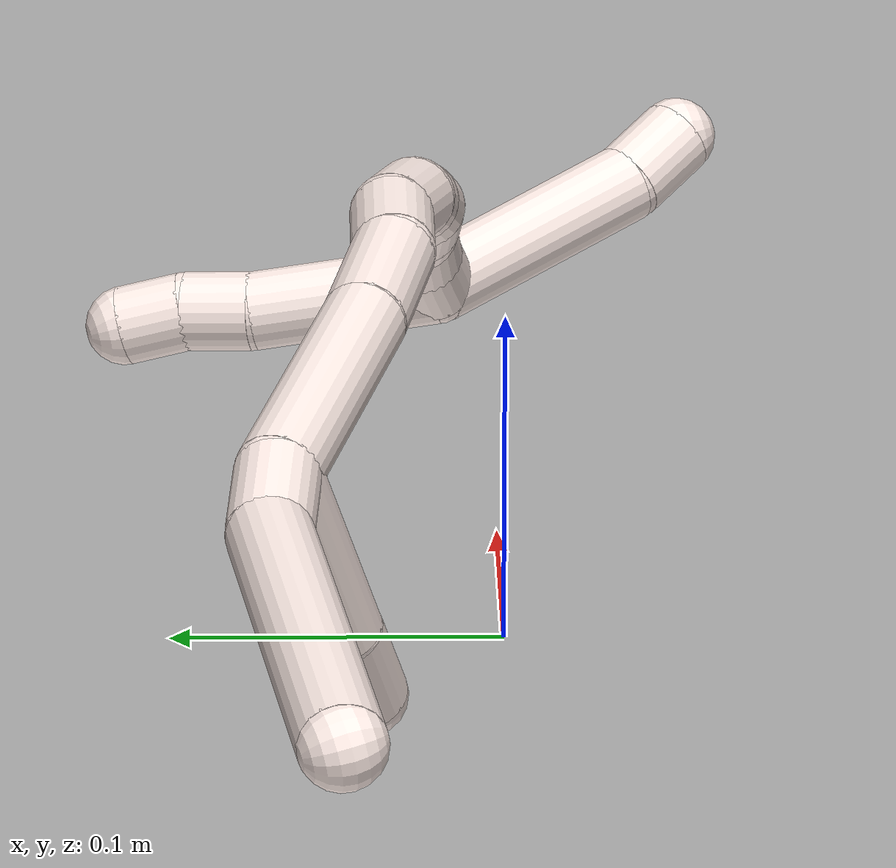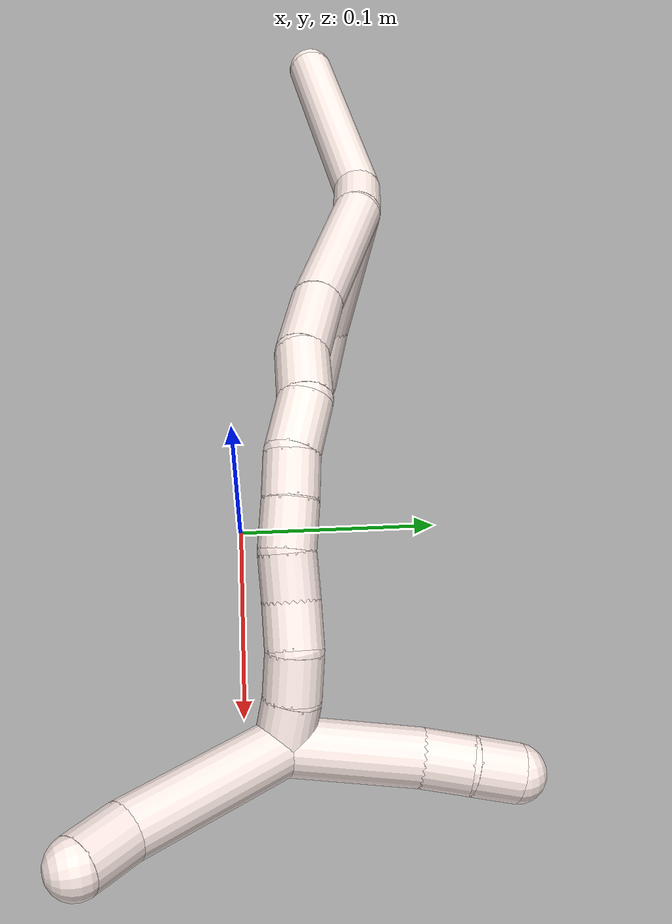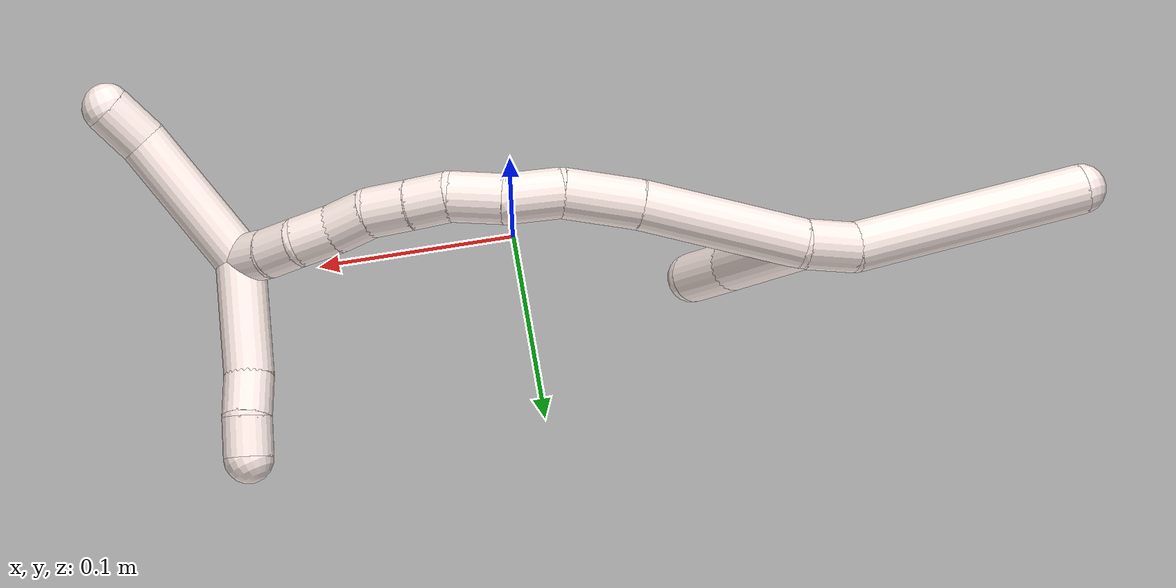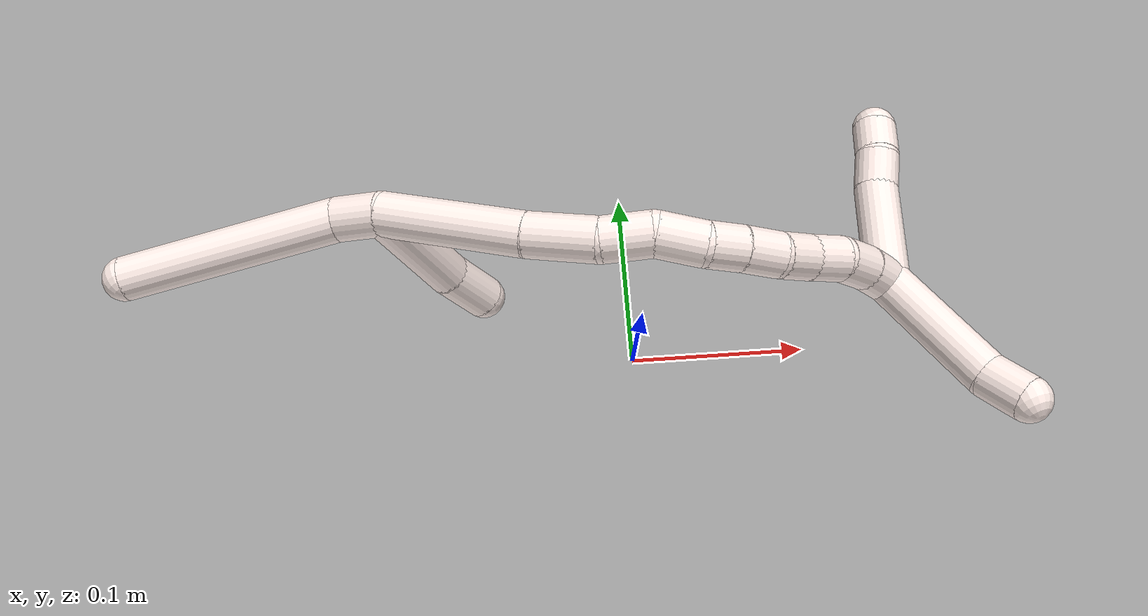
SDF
<sdf version="1.7">
 <world name="default">
  <model name="11">
   <static>0</static>
   <link name="11">
    <collision name="collision-cylinder-e_1_2_8">
     <pose>-0.012502 0.000174 -0.00524 -3.10835 -1.17375 3.09161</pose>
     <geometry><cylinder><radius>0.0125</radius><length>0.027114</length></cylinder></geometry>
     <surface>
      <friction><ode><mu>1.16</mu><mu2>1.16</mu2><slip1>0</slip1><slip2>0</slip2></ode></friction>
      <contact><ode><kp>1e+06</kp><kd>1</kd><max_vel>0</max_vel><min_depth>0.001</min_depth></ode></contact>
     </surface>
    </collision>
    <visual name="visual-cylinder-e_1_2_8">
     <pose>-0.012502 0.000174 -0.00524 -3.10835 -1.17375 3.09161</pose>
     <geometry><cylinder><radius>0.0125</radius><length>0.027114</length></cylinder></geometry>
     <material><ambient>1 0.933333 0.909804 1</ambient></material>
    </visual>
    <collision name="collision-cylinder-e_2_8_6">
     <pose>-0.084797 0.012034 -0.018452 -2.16951 -1.33848 1.9639</pose>
     <geometry><cylinder><radius>0.0125</radius><length>0.122886</length></cylinder></geometry>
     <surface>
      <friction><ode><mu>1.16</mu><mu2>1.16</mu2><slip1>0</slip1><slip2>0</slip2></ode></friction>
      <contact><ode><kp>1e+06</kp><kd>1</kd><max_vel>0</max_vel><min_depth>0.001</min_depth></ode></contact>
     </surface>
    </collision>
    <visual name="visual-cylinder-e_2_8_6">
     <pose>-0.084797 0.012034 -0.018452 -2.16951 -1.33848 1.9639</pose>
     <geometry><cylinder><radius>0.0125</radius><length>0.122886</length></cylinder></geometry>
     <material><ambient>1 0.933333 0.909804 1</ambient></material>
    </visual>
    <collision name="collision-cylinder-e_1_2_9">
     <pose>0.002187 -0.033053 0.006441 1.37835 0.064861 0.053449</pose>
     <geometry><cylinder><radius>0.0125</radius><length>0.067492</length></cylinder></geometry>
     <surface>
      <friction><ode><mu>1.16</mu><mu2>1.16</mu2><slip1>0</slip1><slip2>0</slip2></ode></friction>
      <contact><ode><kp>1e+06</kp><kd>1</kd><max_vel>0</max_vel><min_depth>0.001</min_depth></ode></contact>
     </surface>
    </collision>
    <visual name="visual-cylinder-e_1_2_9">
     <pose>0.002187 -0.033053 0.006441 1.37835 0.064861 0.053449</pose>
     <geometry><cylinder><radius>0.0125</radius><length>0.067492</length></cylinder></geometry>
     <material><ambient>1 0.933333 0.909804 1</ambient></material>
    </visual>
    <collision name="collision-cylinder-e_2_9_5">
     <pose>0.007551 -0.081708 0.016155 1.36397 0.196667 0.159859</pose>
     <geometry><cylinder><radius>0.0125</radius><length>0.032508</length></cylinder></geometry>
     <surface>
      <friction><ode><mu>1.16</mu><mu2>1.16</mu2><slip1>0</slip1><slip2>0</slip2></ode></friction>
      <contact><ode><kp>1e+06</kp><kd>1</kd><max_vel>0</max_vel><min_depth>0.001</min_depth></ode></contact>
     </surface>
    </collision>
    <visual name="visual-cylinder-e_2_9_5">
     <pose>0.007551 -0.081708 0.016155 1.36397 0.196667 0.159859</pose>
     <geometry><cylinder><radius>0.0125</radius><length>0.032508</length></cylinder></geometry>
     <material><ambient>1 0.933333 0.909804 1</ambient></material>
    </visual>
    <collision name="collision-cylinder-e_1_2_10">
     <pose>0.033944 -0.00491 0.023665 0.204579 0.952044 0.105745</pose>
     <geometry><cylinder><radius>0.0125</radius><length>0.083339</length></cylinder></geometry>
     <surface>
      <friction><ode><mu>1.16</mu><mu2>1.16</mu2><slip1>0</slip1><slip2>0</slip2></ode></friction>
      <contact><ode><kp>1e+06</kp><kd>1</kd><max_vel>0</max_vel><min_depth>0.001</min_depth></ode></contact>
     </surface>
    </collision>
    <visual name="visual-cylinder-e_1_2_10">
     <pose>0.033944 -0.00491 0.023665 0.204579 0.952044 0.105745</pose>
     <geometry><cylinder><radius>0.0125</radius><length>0.083339</length></cylinder></geometry>
     <material><ambient>1 0.933333 0.909804 1</ambient></material>
    </visual>
    <collision name="collision-cylinder-e_2_10_11">
     <pose>0.084819 -0.012663 0.057191 0.280708 1.02588 0.158813</pose>
     <geometry><cylinder><radius>0.0125</radius><length>0.039595</length></cylinder></geometry>
     <surface>
      <friction><ode><mu>1.16</mu><mu2>1.16</mu2><slip1>0</slip1><slip2>0</slip2></ode></friction>
      <contact><ode><kp>1e+06</kp><kd>1</kd><max_vel>0</max_vel><min_depth>0.001</min_depth></ode></contact>
     </surface>
    </collision>
    <visual name="visual-cylinder-e_2_10_11">
     <pose>0.084819 -0.012663 0.057191 0.280708 1.02588 0.158813</pose>
     <geometry><cylinder><radius>0.0125</radius><length>0.039595</length></cylinder></geometry>
     <material><ambient>1 0.933333 0.909804 1</ambient></material>
    </visual>
    <collision name="collision-cylinder-e_3_11_12">
     <pose>0.114705 -0.018749 0.070826 0.709646 1.20404 0.498562</pose>
     <geometry><cylinder><radius>0.0125</radius><length>0.027757</length></cylinder></geometry>
     <surface>
      <friction><ode><mu>1.16</mu><mu2>1.16</mu2><slip1>0</slip1><slip2>0</slip2></ode></friction>
      <contact><ode><kp>1e+06</kp><kd>1</kd><max_vel>0</max_vel><min_depth>0.001</min_depth></ode></contact>
     </surface>
    </collision>
    <visual name="visual-cylinder-e_3_11_12">
     <pose>0.114705 -0.018749 0.070826 0.709646 1.20404 0.498562</pose>
     <geometry><cylinder><radius>0.0125</radius><length>0.027757</length></cylinder></geometry>
     <material><ambient>1 0.933333 0.909804 1</ambient></material>
    </visual>
    <collision name="collision-cylinder-e_4_12_13">
     <pose>0.137797 -0.027976 0.080843 0.764448 0.864535 0.366767</pose>
     <geometry><cylinder><radius>0.0125</radius><length>0.026648</length></cylinder></geometry>
     <surface>
      <friction><ode><mu>1.16</mu><mu2>1.16</mu2><slip1>0</slip1><slip2>0</slip2></ode></friction>
      <contact><ode><kp>1e+06</kp><kd>1</kd><max_vel>0</max_vel><min_depth>0.001</min_depth></ode></contact>
     </surface>
    </collision>
    <visual name="visual-cylinder-e_4_12_13">
     <pose>0.137797 -0.027976 0.080843 0.764448 0.864535 0.366767</pose>
     <geometry><cylinder><radius>0.0125</radius><length>0.026648</length></cylinder></geometry>
     <material><ambient>1 0.933333 0.909804 1</ambient></material>
    </visual>
    <collision name="collision-cylinder-e_5_13_14">
     <pose>0.155337 -0.040322 0.089641 1.18863 0.823762 0.574181</pose>
     <geometry><cylinder><radius>0.0125</radius><length>0.020179</length></cylinder></geometry>
     <surface>
      <friction><ode><mu>1.16</mu><mu2>1.16</mu2><slip1>0</slip1><slip2>0</slip2></ode></friction>
      <contact><ode><kp>1e+06</kp><kd>1</kd><max_vel>0</max_vel><min_depth>0.001</min_depth></ode></contact>
     </surface>
    </collision>
    <visual name="visual-cylinder-e_5_13_14">
     <pose>0.155337 -0.040322 0.089641 1.18863 0.823762 0.574181</pose>
     <geometry><cylinder><radius>0.0125</radius><length>0.020179</length></cylinder></geometry>
     <material><ambient>1 0.933333 0.909804 1</ambient></material>
    </visual>
    <collision name="collision-cylinder-e_6_14_15">
     <pose>0.170201 -0.053906 0.095108 1.18768 0.764103 0.52978</pose>
     <geometry><cylinder><radius>0.0125</radius><length>0.021571</length></cylinder></geometry>
     <surface>
      <friction><ode><mu>1.16</mu><mu2>1.16</mu2><slip1>0</slip1><slip2>0</slip2></ode></friction>
      <contact><ode><kp>1e+06</kp><kd>1</kd><max_vel>0</max_vel><min_depth>0.001</min_depth></ode></contact>
     </surface>
    </collision>
    <visual name="visual-cylinder-e_6_14_15">
     <pose>0.170201 -0.053906 0.095108 1.18768 0.764103 0.52978</pose>
     <geometry><cylinder><radius>0.0125</radius><length>0.021571</length></cylinder></geometry>
     <material><ambient>1 0.933333 0.909804 1</ambient></material>
    </visual>
    <collision name="collision-cylinder-e_7_15_16">
     <pose>0.184073 -0.069111 0.098734 1.48145 0.674535 0.620595</pose>
     <geometry><cylinder><radius>0.0125</radius><length>0.020525</length></cylinder></geometry>
     <surface>
      <friction><ode><mu>1.16</mu><mu2>1.16</mu2><slip1>0</slip1><slip2>0</slip2></ode></friction>
      <contact><ode><kp>1e+06</kp><kd>1</kd><max_vel>0</max_vel><min_depth>0.001</min_depth></ode></contact>
     </surface>
    </collision>
    <visual name="visual-cylinder-e_7_15_16">
     <pose>0.184073 -0.069111 0.098734 1.48145 0.674535 0.620595</pose>
     <geometry><cylinder><radius>0.0125</radius><length>0.020525</length></cylinder></geometry>
     <material><ambient>1 0.933333 0.909804 1</ambient></material>
    </visual>
    <collision name="collision-cylinder-e_8_16_17">
     <pose>0.197692 -0.08405 0.100782 1.38156 0.794372 0.667572</pose>
     <geometry><cylinder><radius>0.0125</radius><length>0.020212</length></cylinder></geometry>
     <surface>
      <friction><ode><mu>1.16</mu><mu2>1.16</mu2><slip1>0</slip1><slip2>0</slip2></ode></friction>
      <contact><ode><kp>1e+06</kp><kd>1</kd><max_vel>0</max_vel><min_depth>0.001</min_depth></ode></contact>
     </surface>
    </collision>
    <visual name="visual-cylinder-e_8_16_17">
     <pose>0.197692 -0.08405 0.100782 1.38156 0.794372 0.667572</pose>
     <geometry><cylinder><radius>0.0125</radius><length>0.020212</length></cylinder></geometry>
     <material><ambient>1 0.933333 0.909804 1</ambient></material>
    </visual>
    <collision name="collision-cylinder-e_9_17_18">
     <pose>0.20963 -0.099685 0.103739 1.38566 0.491521 0.410564</pose>
     <geometry><cylinder><radius>0.0125</radius><length>0.020033</length></cylinder></geometry>
     <surface>
      <friction><ode><mu>1.16</mu><mu2>1.16</mu2><slip1>0</slip1><slip2>0</slip2></ode></friction>
      <contact><ode><kp>1e+06</kp><kd>1</kd><max_vel>0</max_vel><min_depth>0.001</min_depth></ode></contact>
     </surface>
    </collision>
    <visual name="visual-cylinder-e_9_17_18">
     <pose>0.20963 -0.099685 0.103739 1.38566 0.491521 0.410564</pose>
     <geometry><cylinder><radius>0.0125</radius><length>0.020033</length></cylinder></geometry>
     <material><ambient>1 0.933333 0.909804 1</ambient></material>
    </visual>
    <collision name="collision-cylinder-e_10_18_1">
     <pose>0.218097 -0.117346 0.107962 1.28928 0.380506 0.287562</pose>
     <geometry><cylinder><radius>0.0125</radius><length>0.020141</length></cylinder></geometry>
     <surface>
      <friction><ode><mu>1.16</mu><mu2>1.16</mu2><slip1>0</slip1><slip2>0</slip2></ode></friction>
      <contact><ode><kp>1e+06</kp><kd>1</kd><max_vel>0</max_vel><min_depth>0.001</min_depth></ode></contact>
     </surface>
    </collision>
    <visual name="visual-cylinder-e_10_18_1">
     <pose>0.218097 -0.117346 0.107962 1.28928 0.380506 0.287562</pose>
     <geometry><cylinder><radius>0.0125</radius><length>0.020141</length></cylinder></geometry>
     <material><ambient>1 0.933333 0.909804 1</ambient></material>
    </visual>
    <collision name="collision-cylinder-e_1_1_19">
     <pose>0.233031 -0.125907 0.146568 -0.01169 0.301389 -0.001775</pose>
     <geometry><cylinder><radius>0.0125</radius><length>0.075421</length></cylinder></geometry>
     <surface>
      <friction><ode><mu>1.16</mu><mu2>1.16</mu2><slip1>0</slip1><slip2>0</slip2></ode></friction>
      <contact><ode><kp>1e+06</kp><kd>1</kd><max_vel>0</max_vel><min_depth>0.001</min_depth></ode></contact>
     </surface>
    </collision>
    <visual name="visual-cylinder-e_1_1_19">
     <pose>0.233031 -0.125907 0.146568 -0.01169 0.301389 -0.001775</pose>
     <geometry><cylinder><radius>0.0125</radius><length>0.075421</length></cylinder></geometry>
     <material><ambient>1 0.933333 0.909804 1</ambient></material>
    </visual>
    <collision name="collision-cylinder-e_2_19_4">
     <pose>0.250152 -0.123898 0.193225 -0.148053 0.503164 -0.038119</pose>
     <geometry><cylinder><radius>0.0125</radius><length>0.024579</length></cylinder></geometry>
     <surface>
      <friction><ode><mu>1.16</mu><mu2>1.16</mu2><slip1>0</slip1><slip2>0</slip2></ode></friction>
      <contact><ode><kp>1e+06</kp><kd>1</kd><max_vel>0</max_vel><min_depth>0.001</min_depth></ode></contact>
     </surface>
    </collision>
    <visual name="visual-cylinder-e_2_19_4">
     <pose>0.250152 -0.123898 0.193225 -0.148053 0.503164 -0.038119</pose>
     <geometry><cylinder><radius>0.0125</radius><length>0.024579</length></cylinder></geometry>
     <material><ambient>1 0.933333 0.909804 1</ambient></material>
    </visual>
    <collision name="collision-cylinder-e_1_1_20">
     <pose>0.231147 -0.128832 0.082994 3.05102 0.324451 2.60135</pose>
     <geometry><cylinder><radius>0.0125</radius><length>0.058406</length></cylinder></geometry>
     <surface>
      <friction><ode><mu>1.16</mu><mu2>1.16</mu2><slip1>0</slip1><slip2>0</slip2></ode></friction>
      <contact><ode><kp>1e+06</kp><kd>1</kd><max_vel>0</max_vel><min_depth>0.001</min_depth></ode></contact>
     </surface>
    </collision>
    <visual name="visual-cylinder-e_1_1_20">
     <pose>0.231147 -0.128832 0.082994 3.05102 0.324451 2.60135</pose>
     <geometry><cylinder><radius>0.0125</radius><length>0.058406</length></cylinder></geometry>
     <material><ambient>1 0.933333 0.909804 1</ambient></material>
    </visual>
    <collision name="collision-cylinder-e_2_20_21">
     <pose>0.24532 -0.13155 0.04591 3.11904 0.472297 3.04796</pose>
     <geometry><cylinder><radius>0.0125</radius><length>0.021383</length></cylinder></geometry>
     <surface>
      <friction><ode><mu>1.16</mu><mu2>1.16</mu2><slip1>0</slip1><slip2>0</slip2></ode></friction>
      <contact><ode><kp>1e+06</kp><kd>1</kd><max_vel>0</max_vel><min_depth>0.001</min_depth></ode></contact>
     </surface>
    </collision>
    <visual name="visual-cylinder-e_2_20_21">
     <pose>0.24532 -0.13155 0.04591 3.11904 0.472297 3.04796</pose>
     <geometry><cylinder><radius>0.0125</radius><length>0.021383</length></cylinder></geometry>
     <material><ambient>1 0.933333 0.909804 1</ambient></material>
    </visual>
    <collision name="collision-cylinder-e_3_21_3">
     <pose>0.253364 -0.133648 0.026986 2.94394 0.320131 2.04011</pose>
     <geometry><cylinder><radius>0.0125</radius><length>0.020211</length></cylinder></geometry>
     <surface>
      <friction><ode><mu>1.16</mu><mu2>1.16</mu2><slip1>0</slip1><slip2>0</slip2></ode></friction>
      <contact><ode><kp>1e+06</kp><kd>1</kd><max_vel>0</max_vel><min_depth>0.001</min_depth></ode></contact>
     </surface>
    </collision>
    <visual name="visual-cylinder-e_3_21_3">
     <pose>0.253364 -0.133648 0.026986 2.94394 0.320131 2.04011</pose>
     <geometry><cylinder><radius>0.0125</radius><length>0.020211</length></cylinder></geometry>
     <material><ambient>1 0.933333 0.909804 1</ambient></material>
    </visual>
    <collision name="collision-sphere-3">
     <pose>0.256544 -0.135532 0.01758 0 -0 0</pose>
     <geometry><sphere><radius>0.0125</radius></sphere></geometry>
     <surface>
      <friction><ode><mu>1.16</mu><mu2>1.16</mu2><slip1>0</slip1><slip2>0</slip2></ode></friction>
      <contact><ode><kp>1e+06</kp><kd>1</kd><max_vel>0</max_vel><min_depth>0.001</min_depth></ode></contact>
     </surface>
    </collision>
    <visual name="visual-sphere-3">
     <pose>0.256544 -0.135532 0.01758 0 -0 0</pose>
     <geometry><sphere><radius>0.0125</radius></sphere></geometry>
     <material><ambient>1 0.933333 0.909804 1</ambient></material>
    </visual>
    <collision name="collision-sphere-21">
     <pose>0.250184 -0.131765 0.036391 0 -0 0</pose>
     <geometry><sphere><radius>0.0125</radius></sphere></geometry>
     <surface>
      <friction><ode><mu>1.16</mu><mu2>1.16</mu2><slip1>0</slip1><slip2>0</slip2></ode></friction>
      <contact><ode><kp>1e+06</kp><kd>1</kd><max_vel>0</max_vel><min_depth>0.001</min_depth></ode></contact>
     </surface>
    </collision>
    <visual name="visual-sphere-21">
     <pose>0.250184 -0.131765 0.036391 0 -0 0</pose>
     <geometry><sphere><radius>0.0125</radius></sphere></geometry>
     <material><ambient>1 0.933333 0.909804 1</ambient></material>
    </visual>
    <collision name="collision-sphere-20">
     <pose>0.240456 -0.131335 0.055428 0 -0 0</pose>
     <geometry><sphere><radius>0.0125</radius></sphere></geometry>
     <surface>
      <friction><ode><mu>1.16</mu><mu2>1.16</mu2><slip1>0</slip1><slip2>0</slip2></ode></friction>
      <contact><ode><kp>1e+06</kp><kd>1</kd><max_vel>0</max_vel><min_depth>0.001</min_depth></ode></contact>
     </surface>
    </collision>
    <visual name="visual-sphere-20">
     <pose>0.240456 -0.131335 0.055428 0 -0 0</pose>
     <geometry><sphere><radius>0.0125</radius></sphere></geometry>
     <material><ambient>1 0.933333 0.909804 1</ambient></material>
    </visual>
    <collision name="collision-sphere-4">
     <pose>0.256078 -0.12231 0.203874 0 -0 0</pose>
     <geometry><sphere><radius>0.0125</radius></sphere></geometry>
     <surface>
      <friction><ode><mu>1.16</mu><mu2>1.16</mu2><slip1>0</slip1><slip2>0</slip2></ode></friction>
      <contact><ode><kp>1e+06</kp><kd>1</kd><max_vel>0</max_vel><min_depth>0.001</min_depth></ode></contact>
     </surface>
    </collision>
    <visual name="visual-sphere-4">
     <pose>0.256078 -0.12231 0.203874 0 -0 0</pose>
     <geometry><sphere><radius>0.0125</radius></sphere></geometry>
     <material><ambient>1 0.933333 0.909804 1</ambient></material>
    </visual>
    <collision name="collision-sphere-10">
     <pose>0.067888 -0.00982 0.04733 0 -0 0</pose>
     <geometry><sphere><radius>0.0125</radius></sphere></geometry>
     <surface>
      <friction><ode><mu>1.16</mu><mu2>1.16</mu2><slip1>0</slip1><slip2>0</slip2></ode></friction>
      <contact><ode><kp>1e+06</kp><kd>1</kd><max_vel>0</max_vel><min_depth>0.001</min_depth></ode></contact>
     </surface>
    </collision>
    <visual name="visual-sphere-10">
     <pose>0.067888 -0.00982 0.04733 0 -0 0</pose>
     <geometry><sphere><radius>0.0125</radius></sphere></geometry>
     <material><ambient>1 0.933333 0.909804 1</ambient></material>
    </visual>
    <collision name="collision-sphere-5">
     <pose>0.010727 -0.097309 0.019428 0 -0 0</pose>
     <geometry><sphere><radius>0.0125</radius></sphere></geometry>
     <surface>
      <friction><ode><mu>1.16</mu><mu2>1.16</mu2><slip1>0</slip1><slip2>0</slip2></ode></friction>
      <contact><ode><kp>1e+06</kp><kd>1</kd><max_vel>0</max_vel><min_depth>0.001</min_depth></ode></contact>
     </surface>
    </collision>
    <visual name="visual-sphere-5">
     <pose>0.010727 -0.097309 0.019428 0 -0 0</pose>
     <geometry><sphere><radius>0.0125</radius></sphere></geometry>
     <material><ambient>1 0.933333 0.909804 1</ambient></material>
    </visual>
    <collision name="collision-sphere-6">
     <pose>-0.14459 0.023719 -0.026424 0 -0 0</pose>
     <geometry><sphere><radius>0.0125</radius></sphere></geometry>
     <surface>
      <friction><ode><mu>1.16</mu><mu2>1.16</mu2><slip1>0</slip1><slip2>0</slip2></ode></friction>
      <contact><ode><kp>1e+06</kp><kd>1</kd><max_vel>0</max_vel><min_depth>0.001</min_depth></ode></contact>
     </surface>
    </collision>
    <visual name="visual-sphere-6">
     <pose>-0.14459 0.023719 -0.026424 0 -0 0</pose>
     <geometry><sphere><radius>0.0125</radius></sphere></geometry>
     <material><ambient>1 0.933333 0.909804 1</ambient></material>
    </visual>
    <collision name="collision-sphere-9">
     <pose>0.004375 -0.066106 0.012881 0 -0 0</pose>
     <geometry><sphere><radius>0.0125</radius></sphere></geometry>
     <surface>
      <friction><ode><mu>1.16</mu><mu2>1.16</mu2><slip1>0</slip1><slip2>0</slip2></ode></friction>
      <contact><ode><kp>1e+06</kp><kd>1</kd><max_vel>0</max_vel><min_depth>0.001</min_depth></ode></contact>
     </surface>
    </collision>
    <visual name="visual-sphere-9">
     <pose>0.004375 -0.066106 0.012881 0 -0 0</pose>
     <geometry><sphere><radius>0.0125</radius></sphere></geometry>
     <material><ambient>1 0.933333 0.909804 1</ambient></material>
    </visual>
    <collision name="collision-sphere-2">
     <geometry><sphere><radius>0.0125</radius></sphere></geometry>
     <surface>
      <friction><ode><mu>1.16</mu><mu2>1.16</mu2><slip1>0</slip1><slip2>0</slip2></ode></friction>
      <contact><ode><kp>1e+06</kp><kd>1</kd><max_vel>0</max_vel><min_depth>0.001</min_depth></ode></contact>
     </surface>
    </collision>
    <visual name="visual-sphere-2">
     <geometry><sphere><radius>0.0125</radius></sphere></geometry>
     <material><ambient>1 0.933333 0.909804 1</ambient></material>
    </visual>
    <collision name="collision-sphere-19">
     <pose>0.244226 -0.125487 0.182576 0 -0 0</pose>
     <geometry><sphere><radius>0.0125</radius></sphere></geometry>
     <surface>
      <friction><ode><mu>1.16</mu><mu2>1.16</mu2><slip1>0</slip1><slip2>0</slip2></ode></friction>
      <contact><ode><kp>1e+06</kp><kd>1</kd><max_vel>0</max_vel><min_depth>0.001</min_depth></ode></contact>
     </surface>
    </collision>
    <visual name="visual-sphere-19">
     <pose>0.244226 -0.125487 0.182576 0 -0 0</pose>
     <geometry><sphere><radius>0.0125</radius></sphere></geometry>
     <material><ambient>1 0.933333 0.909804 1</ambient></material>
    </visual>
    <collision name="collision-sphere-8">
     <pose>-0.025005 0.000349 -0.010479 0 -0 0</pose>
     <geometry><sphere><radius>0.0125</radius></sphere></geometry>
     <surface>
      <friction><ode><mu>1.16</mu><mu2>1.16</mu2><slip1>0</slip1><slip2>0</slip2></ode></friction>
      <contact><ode><kp>1e+06</kp><kd>1</kd><max_vel>0</max_vel><min_depth>0.001</min_depth></ode></contact>
     </surface>
    </collision>
    <visual name="visual-sphere-8">
     <pose>-0.025005 0.000349 -0.010479 0 -0 0</pose>
     <geometry><sphere><radius>0.0125</radius></sphere></geometry>
     <material><ambient>1 0.933333 0.909804 1</ambient></material>
    </visual>
    <collision name="collision-sphere-11">
     <pose>0.101749 -0.015506 0.067051 0 -0 0</pose>
     <geometry><sphere><radius>0.0125</radius></sphere></geometry>
     <surface>
      <friction><ode><mu>1.16</mu><mu2>1.16</mu2><slip1>0</slip1><slip2>0</slip2></ode></friction>
      <contact><ode><kp>1e+06</kp><kd>1</kd><max_vel>0</max_vel><min_depth>0.001</min_depth></ode></contact>
     </surface>
    </collision>
    <visual name="visual-sphere-11">
     <pose>0.101749 -0.015506 0.067051 0 -0 0</pose>
     <geometry><sphere><radius>0.0125</radius></sphere></geometry>
     <material><ambient>1 0.933333 0.909804 1</ambient></material>
    </visual>
    <collision name="collision-sphere-12">
     <pose>0.12766 -0.021991 0.074602 0 -0 0</pose>
     <geometry><sphere><radius>0.0125</radius></sphere></geometry>
     <surface>
      <friction><ode><mu>1.16</mu><mu2>1.16</mu2><slip1>0</slip1><slip2>0</slip2></ode></friction>
      <contact><ode><kp>1e+06</kp><kd>1</kd><max_vel>0</max_vel><min_depth>0.001</min_depth></ode></contact>
     </surface>
    </collision>
    <visual name="visual-sphere-12">
     <pose>0.12766 -0.021991 0.074602 0 -0 0</pose>
     <geometry><sphere><radius>0.0125</radius></sphere></geometry>
     <material><ambient>1 0.933333 0.909804 1</ambient></material>
    </visual>
    <collision name="collision-sphere-13">
     <pose>0.147934 -0.033962 0.087084 0 -0 0</pose>
     <geometry><sphere><radius>0.0125</radius></sphere></geometry>
     <surface>
      <friction><ode><mu>1.16</mu><mu2>1.16</mu2><slip1>0</slip1><slip2>0</slip2></ode></friction>
      <contact><ode><kp>1e+06</kp><kd>1</kd><max_vel>0</max_vel><min_depth>0.001</min_depth></ode></contact>
     </surface>
    </collision>
    <visual name="visual-sphere-13">
     <pose>0.147934 -0.033962 0.087084 0 -0 0</pose>
     <geometry><sphere><radius>0.0125</radius></sphere></geometry>
     <material><ambient>1 0.933333 0.909804 1</ambient></material>
    </visual>
    <collision name="collision-sphere-14">
     <pose>0.162739 -0.046683 0.092197 0 -0 0</pose>
     <geometry><sphere><radius>0.0125</radius></sphere></geometry>
     <surface>
      <friction><ode><mu>1.16</mu><mu2>1.16</mu2><slip1>0</slip1><slip2>0</slip2></ode></friction>
      <contact><ode><kp>1e+06</kp><kd>1</kd><max_vel>0</max_vel><min_depth>0.001</min_depth></ode></contact>
     </surface>
    </collision>
    <visual name="visual-sphere-14">
     <pose>0.162739 -0.046683 0.092197 0 -0 0</pose>
     <geometry><sphere><radius>0.0125</radius></sphere></geometry>
     <material><ambient>1 0.933333 0.909804 1</ambient></material>
    </visual>
    <collision name="collision-sphere-15">
     <pose>0.177664 -0.061128 0.098019 0 -0 0</pose>
     <geometry><sphere><radius>0.0125</radius></sphere></geometry>
     <surface>
      <friction><ode><mu>1.16</mu><mu2>1.16</mu2><slip1>0</slip1><slip2>0</slip2></ode></friction>
      <contact><ode><kp>1e+06</kp><kd>1</kd><max_vel>0</max_vel><min_depth>0.001</min_depth></ode></contact>
     </surface>
    </collision>
    <visual name="visual-sphere-15">
     <pose>0.177664 -0.061128 0.098019 0 -0 0</pose>
     <geometry><sphere><radius>0.0125</radius></sphere></geometry>
     <material><ambient>1 0.933333 0.909804 1</ambient></material>
    </visual>
    <collision name="collision-sphere-16">
     <pose>0.190482 -0.077094 0.099449 0 -0 0</pose>
     <geometry><sphere><radius>0.0125</radius></sphere></geometry>
     <surface>
      <friction><ode><mu>1.16</mu><mu2>1.16</mu2><slip1>0</slip1><slip2>0</slip2></ode></friction>
      <contact><ode><kp>1e+06</kp><kd>1</kd><max_vel>0</max_vel><min_depth>0.001</min_depth></ode></contact>
     </surface>
    </collision>
    <visual name="visual-sphere-16">
     <pose>0.190482 -0.077094 0.099449 0 -0 0</pose>
     <geometry><sphere><radius>0.0125</radius></sphere></geometry>
     <material><ambient>1 0.933333 0.909804 1</ambient></material>
    </visual>
    <collision name="collision-sphere-17">
     <pose>0.204902 -0.091005 0.102114 0 -0 0</pose>
     <geometry><sphere><radius>0.0125</radius></sphere></geometry>
     <surface>
      <friction><ode><mu>1.16</mu><mu2>1.16</mu2><slip1>0</slip1><slip2>0</slip2></ode></friction>
      <contact><ode><kp>1e+06</kp><kd>1</kd><max_vel>0</max_vel><min_depth>0.001</min_depth></ode></contact>
     </surface>
    </collision>
    <visual name="visual-sphere-17">
     <pose>0.204902 -0.091005 0.102114 0 -0 0</pose>
     <geometry><sphere><radius>0.0125</radius></sphere></geometry>
     <material><ambient>1 0.933333 0.909804 1</ambient></material>
    </visual>
    <collision name="collision-sphere-18">
     <pose>0.214357 -0.108364 0.105365 0 -0 0</pose>
     <geometry><sphere><radius>0.0125</radius></sphere></geometry>
     <surface>
      <friction><ode><mu>1.16</mu><mu2>1.16</mu2><slip1>0</slip1><slip2>0</slip2></ode></friction>
      <contact><ode><kp>1e+06</kp><kd>1</kd><max_vel>0</max_vel><min_depth>0.001</min_depth></ode></contact>
     </surface>
    </collision>
    <visual name="visual-sphere-18">
     <pose>0.214357 -0.108364 0.105365 0 -0 0</pose>
     <geometry><sphere><radius>0.0125</radius></sphere></geometry>
     <material><ambient>1 0.933333 0.909804 1</ambient></material>
    </visual>
    <collision name="collision-sphere-1">
     <pose>0.221837 -0.126328 0.11056 0 -0 0</pose>
     <geometry><sphere><radius>0.0125</radius></sphere></geometry>
     <surface>
      <friction><ode><mu>1.16</mu><mu2>1.16</mu2><slip1>0</slip1><slip2>0</slip2></ode></friction>
      <contact><ode><kp>1e+06</kp><kd>1</kd><max_vel>0</max_vel><min_depth>0.001</min_depth></ode></contact>
     </surface>
    </collision>
    <visual name="visual-sphere-1">
     <pose>0.221837 -0.126328 0.11056 0 -0 0</pose>
     <geometry><sphere><radius>0.0125</radius></sphere></geometry>
     <material><ambient>1 0.933333 0.909804 1</ambient></material>
    </visual>
    <inertial>
     <pose>0.097919 -0.054152 0.055016 0 -0 0</pose>
     <mass>0.75</mass>
     <inertia>
      <ixx>0.000147</ixx>
      <ixy>0</ixy>
      <ixz>0</ixz>
      <iyy>0.000328</iyy>
      <iyz>0</iyz>
      <izz>0.000104</izz>
     </inertia>
    </inertial>
   </link>
   <pose>-0.134284 0.066774 0.095583 1.35994 -0.315345 0.331586</pose>
  </model>
 </world>
</sdf>
